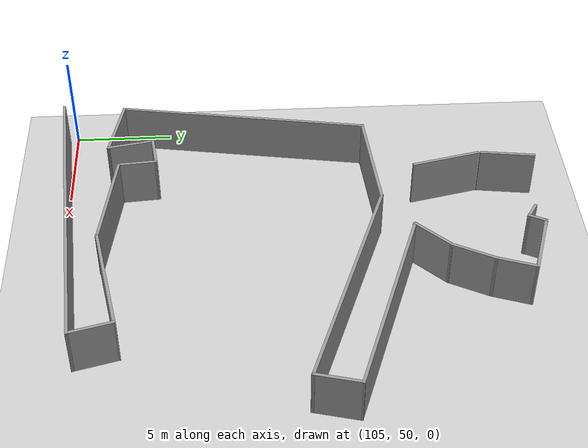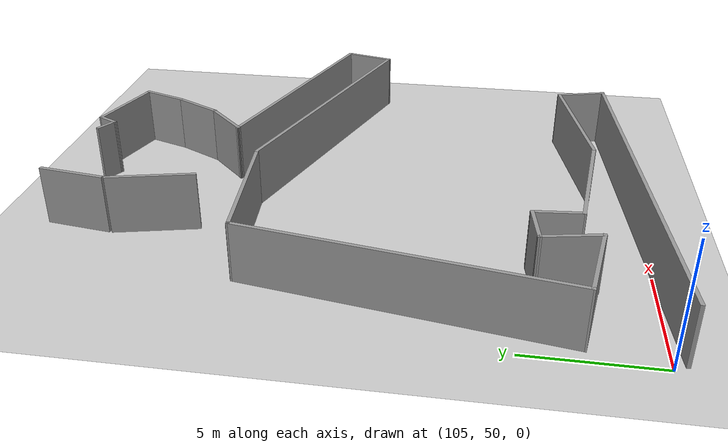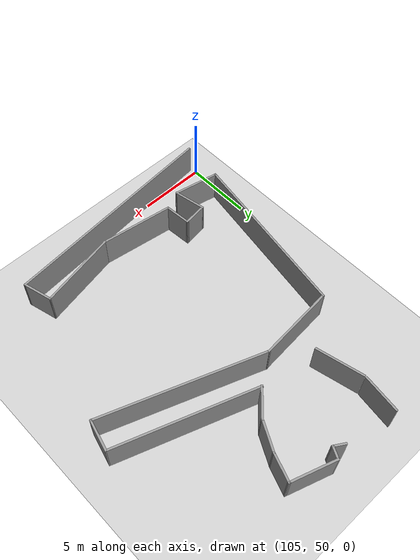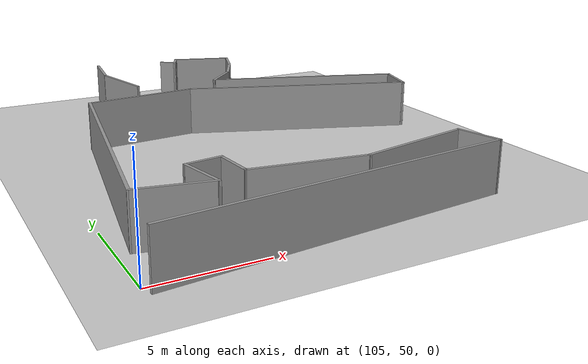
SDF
<sdf version="1.6">
 <world name="default">
  <model name="ground_plane">
   <static>1</static>
   <link name="link">
    <collision name="collision">
     <geometry><plane><normal>0 0 1</normal><size>100 100</size></plane></geometry>
     <surface><friction><ode><mu>100</mu><mu2>50</mu2></ode></friction></surface>
    </collision>
    <visual name="visual">
     <cast_shadows>0</cast_shadows>
     <geometry><plane><normal>0 0 1</normal><size>100 100</size></plane></geometry>
     <material>
      <script><uri>file://media/materials/scripts/gazebo.material</uri><name>Gazebo/Grey</name></script>
     </material>
    </visual>
   </link>
  </model>
  <model name="CMU">
   <pose>62.2844 43.535 0 0 -0 0</pose>
   <link name="Wall_131">
    <collision name="Wall_131_Collision">
     <geometry><box><size>16.5902 0.15 2.5</size></box></geometry>
     <pose>0 0 1.25 0 -0 0</pose>
    </collision>
    <visual name="Wall_131_Visual">
     <pose>0 0 1.25 0 -0 0</pose>
     <geometry><box><size>16.5902 0.15 2.5</size></box></geometry>
     <material>
      <script><uri>file://media/materials/scripts/gazebo.material</uri><name>Gazebo/Grey</name></script>
      <ambient>1 1 1 1</ambient>
     </material>
    </visual>
    <pose>51.1687 6.75156 0 0 -0 0.091249</pose>
   </link>
   <link name="Wall_132">
    <collision name="Wall_132_Collision">
     <geometry><box><size>2.25 0.15 2.5</size></box></geometry>
     <pose>0 0 1.25 0 -0 0</pose>
    </collision>
    <visual name="Wall_132_Visual">
     <pose>0 0 1.25 0 -0 0</pose>
     <geometry><box><size>2.25 0.15 2.5</size></box></geometry>
     <material>
      <script><uri>file://media/materials/scripts/gazebo.material</uri><name>Gazebo/Grey</name></script>
      <ambient>1 1 1 1</ambient>
     </material>
    </visual>
    <pose>59.0828 8.51482 0 0 -0 1.8326</pose>
   </link>
   <link name="Wall_134">
    <collision name="Wall_134_Collision">
     <geometry><box><size>5.86977 0.15 2.5</size></box></geometry>
     <pose>0 0 1.25 0 -0 0</pose>
    </collision>
    <visual name="Wall_134_Visual">
     <pose>0 0 1.25 0 -0 0</pose>
     <geometry><box><size>5.86977 0.15 2.5</size></box></geometry>
     <material>
      <script><uri>file://media/materials/scripts/gazebo.material</uri><name>Gazebo/Grey</name></script>
      <ambient>1 1 1 1</ambient>
     </material>
    </visual>
    <pose>56.0064 8.9696 0 0 0 -2.9447</pose>
   </link>
   <link name="Wall_135">
    <collision name="Wall_135_Collision">
     <geometry><box><size>5.44648 0.15 2.5</size></box></geometry>
     <pose>0 0 1.25 0 -0 0</pose>
    </collision>
    <visual name="Wall_135_Visual">
     <pose>0 0 1.25 0 -0 0</pose>
     <geometry><box><size>5.44648 0.15 2.5</size></box></geometry>
     <material>
      <script><uri>file://media/materials/scripts/gazebo.material</uri><name>Gazebo/Grey</name></script>
      <ambient>1 1 1 1</ambient>
     </material>
    </visual>
    <pose>50.5802 8.78466 0 0 -0 2.9997</pose>
   </link>
   <link name="Wall_136">
    <collision name="Wall_136_Collision">
     <geometry><box><size>2.02945 0.15 2.5</size></box></geometry>
     <pose>0 0 1.25 0 -0 0</pose>
    </collision>
    <visual name="Wall_136_Visual">
     <pose>0 0 1.25 0 -0 0</pose>
     <geometry><box><size>2.02945 0.15 2.5</size></box></geometry>
     <material>
      <script><uri>file://media/materials/scripts/gazebo.material</uri><name>Gazebo/Grey</name></script>
      <ambient>1 1 1 1</ambient>
     </material>
    </visual>
    <pose>47.8783 10.0955 0 0 -0 1.6563</pose>
   </link>
   <link name="Wall_137">
    <collision name="Wall_137_Collision">
     <geometry><box><size>1.82233 0.15 2.5</size></box></geometry>
     <pose>0 0 1.25 0 -0 0</pose>
    </collision>
    <visual name="Wall_137_Visual">
     <pose>0 0 1.25 0 -0 0</pose>
     <geometry><box><size>1.82233 0.15 2.5</size></box></geometry>
     <material>
      <script><uri>file://media/materials/scripts/gazebo.material</uri><name>Gazebo/Grey</name></script>
      <ambient>1 1 1 1</ambient>
     </material>
    </visual>
    <pose>46.9687 10.9248 0 0 0 -3.01327</pose>
   </link>
   <link name="Wall_138">
    <collision name="Wall_138_Collision">
     <geometry><box><size>2.43751 0.15 2.5</size></box></geometry>
     <pose>0 0 1.25 0 -0 0</pose>
    </collision>
    <visual name="Wall_138_Visual">
     <pose>0 0 1.25 0 -0 0</pose>
     <geometry><box><size>2.43751 0.15 2.5</size></box></geometry>
     <material>
      <script><uri>file://media/materials/scripts/gazebo.material</uri><name>Gazebo/Grey</name></script>
      <ambient>1 1 1 1</ambient>
     </material>
    </visual>
    <pose>46.3535 9.69421 0 0 0 -1.38258</pose>
   </link>
   <link name="Wall_139">
    <collision name="Wall_139_Collision">
     <geometry><box><size>3.4762 0.15 2.5</size></box></geometry>
     <pose>0 0 1.25 0 -0 0</pose>
    </collision>
    <visual name="Wall_139_Visual">
     <pose>0 0 1.25 0 -0 0</pose>
     <geometry><box><size>3.4762 0.15 2.5</size></box></geometry>
     <material>
      <script><uri>file://media/materials/scripts/gazebo.material</uri><name>Gazebo/Grey</name></script>
      <ambient>1 1 1 1</ambient>
     </material>
    </visual>
    <pose>44.9356 8.89167 0 0 -0 2.94735</pose>
   </link>
   <link name="Wall_140">
    <collision name="Wall_140_Collision">
     <geometry><box><size>12.8423 0.15 2.5</size></box></geometry>
     <pose>0 0 1.25 0 -0 0</pose>
    </collision>
    <visual name="Wall_140_Visual">
     <pose>0 0 1.25 0 -0 0</pose>
     <geometry><box><size>12.8423 0.15 2.5</size></box></geometry>
     <material>
      <script><uri>file://media/materials/scripts/gazebo.material</uri><name>Gazebo/Grey</name></script>
      <ambient>1 1 1 1</ambient>
     </material>
    </visual>
    <pose>44.3471 15.4725 0 0 -0 1.40565</pose>
   </link>
   <link name="Wall_141">
    <collision name="Wall_141_Collision">
     <geometry><box><size>5.78404 0.15 2.5</size></box></geometry>
     <pose>0 0 1.25 0 -0 0</pose>
    </collision>
    <visual name="Wall_141_Visual">
     <pose>0 0 1.25 0 -0 0</pose>
     <geometry><box><size>5.78404 0.15 2.5</size></box></geometry>
     <material>
      <script><uri>file://media/materials/scripts/gazebo.material</uri><name>Gazebo/Grey</name></script>
      <ambient>1 1 1 1</ambient>
     </material>
    </visual>
    <pose>48.1993 21.9463 0 0 -0 0.076044</pose>
   </link>
   <link name="Wall_142">
    <collision name="Wall_142_Collision">
     <geometry><box><size>12.0987 0.15 2.5</size></box></geometry>
     <pose>0 0 1.25 0 -0 0</pose>
    </collision>
    <visual name="Wall_142_Visual">
     <pose>0 0 1.25 0 -0 0</pose>
     <geometry><box><size>12.0987 0.15 2.5</size></box></geometry>
     <material>
      <script><uri>file://media/materials/scripts/gazebo.material</uri><name>Gazebo/Grey</name></script>
      <ambient>1 1 1 1</ambient>
     </material>
    </visual>
    <pose>56.6259 20.1272 0 0 0 -0.347241</pose>
   </link>
   <link name="Wall_143">
    <collision name="Wall_143_Collision">
     <geometry><box><size>2.3041 0.15 2.5</size></box></geometry>
     <pose>0 0 1.25 0 -0 0</pose>
    </collision>
    <visual name="Wall_143_Visual">
     <pose>0 0 1.25 0 -0 0</pose>
     <geometry><box><size>2.3041 0.15 2.5</size></box></geometry>
     <material>
      <script><uri>file://media/materials/scripts/gazebo.material</uri><name>Gazebo/Grey</name></script>
      <ambient>1 1 1 1</ambient>
     </material>
    </visual>
    <pose>62.5112 19.1374 0 0 -0 1.31979</pose>
   </link>
   <link name="Wall_144">
    <collision name="Wall_144_Collision">
     <geometry><box><size>10.4038 0.15 2.5</size></box></geometry>
     <pose>0 0 1.25 0 -0 0</pose>
    </collision>
    <visual name="Wall_144_Visual">
     <pose>0 0 1.25 0 -0 0</pose>
     <geometry><box><size>10.4038 0.15 2.5</size></box></geometry>
     <material>
      <script><uri>file://media/materials/scripts/gazebo.material</uri><name>Gazebo/Grey</name></script>
      <ambient>1 1 1 1</ambient>
     </material>
    </visual>
    <pose>57.9367 21.866 0 0 -0 2.80664</pose>
   </link>
   <link name="Wall_146">
    <collision name="Wall_146_Collision">
     <geometry><box><size>2.34425 0.15 2.5</size></box></geometry>
     <pose>0 0 1.25 0 -0 0</pose>
    </collision>
    <visual name="Wall_146_Visual">
     <pose>0 0 1.25 0 -0 0</pose>
     <geometry><box><size>2.34425 0.15 2.5</size></box></geometry>
     <material>
      <script><uri>file://media/materials/scripts/gazebo.material</uri><name>Gazebo/Grey</name></script>
      <ambient>1 1 1 1</ambient>
     </material>
    </visual>
    <pose>53.8706 24.3271 0 0 -0 0.785398</pose>
   </link>
   <link name="Wall_147">
    <collision name="Wall_147_Collision">
     <geometry><box><size>2.32789 0.15 2.5</size></box></geometry>
     <pose>0 0 1.25 0 -0 0</pose>
    </collision>
    <visual name="Wall_147_Visual">
     <pose>0 0 1.25 0 -0 0</pose>
     <geometry><box><size>2.32789 0.15 2.5</size></box></geometry>
     <material>
      <script><uri>file://media/materials/scripts/gazebo.material</uri><name>Gazebo/Grey</name></script>
      <ambient>1 1 1 1</ambient>
     </material>
    </visual>
    <pose>55.1546 26.066 0 0 -0 1.08517</pose>
   </link>
   <link name="Wall_148">
    <collision name="Wall_148_Collision">
     <geometry><box><size>2.07906 0.15 2.5</size></box></geometry>
     <pose>0 0 1.25 0 -0 0</pose>
    </collision>
    <visual name="Wall_148_Visual">
     <pose>0 0 1.25 0 -0 0</pose>
     <geometry><box><size>2.07906 0.15 2.5</size></box></geometry>
     <material>
      <script><uri>file://media/materials/scripts/gazebo.material</uri><name>Gazebo/Grey</name></script>
      <ambient>1 1 1 1</ambient>
     </material>
    </visual>
    <pose>55.9839 27.9386 0 0 -0 1.2315</pose>
   </link>
   <link name="Wall_149">
    <collision name="Wall_149_Collision">
     <geometry><box><size>3.41541 0.15 2.5</size></box></geometry>
     <pose>0 0 1.25 0 -0 0</pose>
    </collision>
    <visual name="Wall_149_Visual">
     <pose>0 0 1.25 0 -0 0</pose>
     <geometry><box><size>3.41541 0.15 2.5</size></box></geometry>
     <material>
      <script><uri>file://media/materials/scripts/gazebo.material</uri><name>Gazebo/Grey</name></script>
      <ambient>1 1 1 1</ambient>
     </material>
    </visual>
    <pose>54.7533 29.3564 0 0 -0 2.82502</pose>
   </link>
   <link name="Wall_150">
    <collision name="Wall_150_Collision">
     <geometry><box><size>0.987447 0.15 2.5</size></box></geometry>
     <pose>0 0 1.25 0 -0 0</pose>
    </collision>
    <visual name="Wall_150_Visual">
     <pose>0 0 1.25 0 -0 0</pose>
     <geometry><box><size>0.987447 0.15 2.5</size></box></geometry>
     <material>
      <script><uri>file://media/materials/scripts/gazebo.material</uri><name>Gazebo/Grey</name></script>
      <ambient>1 1 1 1</ambient>
     </material>
    </visual>
    <pose>53.0145 29.4901 0 0 0 -2.03444</pose>
   </link>
   <link name="Wall_151">
    <collision name="Wall_151_Collision">
     <geometry><box><size>0.96668 0.15 2.5</size></box></geometry>
     <pose>0 0 1.25 0 -0 0</pose>
    </collision>
    <visual name="Wall_151_Visual">
     <pose>0 0 1.25 0 -0 0</pose>
     <geometry><box><size>0.96668 0.15 2.5</size></box></geometry>
     <material>
      <script><uri>file://media/materials/scripts/gazebo.material</uri><name>Gazebo/Grey</name></script>
      <ambient>1 1 1 1</ambient>
     </material>
    </visual>
    <pose>52.4795 29.3296 0 0 -0 2.58994</pose>
   </link>
   <link name="Wall_199">
    <collision name="Wall_199_Collision">
     <geometry><box><size>2.79181 0.15 2.5</size></box></geometry>
     <pose>0 0 1.25 0 -0 0</pose>
    </collision>
    <visual name="Wall_199_Visual">
     <pose>0 0 1.25 0 -0 0</pose>
     <geometry><box><size>2.79181 0.15 2.5</size></box></geometry>
     <material>
      <script><uri>file://media/materials/scripts/gazebo.material</uri><name>Gazebo/Grey</name></script>
      <ambient>1 1 1 1</ambient>
     </material>
    </visual>
    <pose>48.1017 28.9263 0 0 0 -1.70512</pose>
   </link>
   <link name="Wall_201">
    <collision name="Wall_201_Collision">
     <geometry><box><size>3.56545 0.15 2.5</size></box></geometry>
     <pose>0 0 1.25 0 -0 0</pose>
    </collision>
    <visual name="Wall_201_Visual">
     <pose>0 0 1.25 0 -0 0</pose>
     <geometry><box><size>3.56545 0.15 2.5</size></box></geometry>
     <material>
      <script><uri>file://media/materials/scripts/gazebo.material</uri><name>Gazebo/Grey</name></script>
      <ambient>1 1 1 1</ambient>
     </material>
    </visual>
    <pose>48.314 25.7422 0 0 0 -1.34089</pose>
   </link>
   <static>1</static>
  </model>
 </world>
</sdf>
